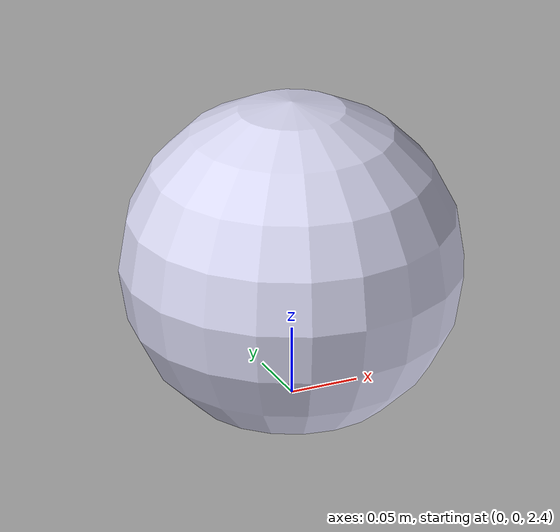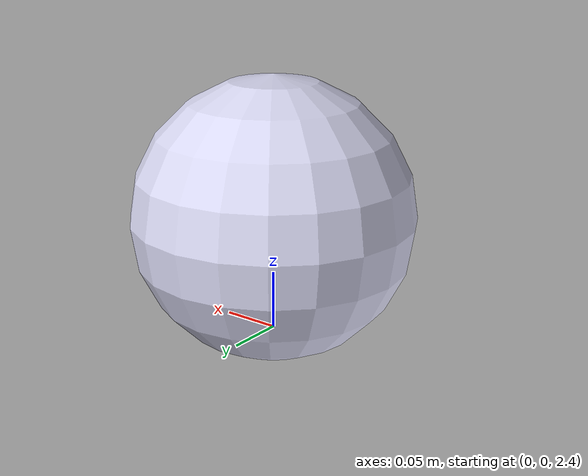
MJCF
<mujoco model="low_gravity">
  <option timestep="0.002" gravity="0 0 -1.62" integrator="RK4"/>

  <visual>
    <headlight diffuse="0.6 0.6 0.6" ambient="0.3 0.3 0.3" specular="0 0 0"/>
    <rgba haze="0.15 0.25 0.35 1"/>
    <global azimuth="120" elevation="-20"/>
  </visual>

  <asset>
    <texture type="skybox" builtin="gradient" rgb1="0.05 0.05 0.1" rgb2="0 0 0"
             width="512" height="3072"/>
    <texture name="grid" type="2d" builtin="checker" rgb1="0.2 0.18 0.16" rgb2="0.3 0.27 0.24"
             width="300" height="300"/>
    <material name="grid" texture="grid" texrepeat="6 6" texuniform="true" reflectance="0.1"/>
  </asset>

  <worldbody>
    <light pos="0 0 3" dir="0 0 -1" diffuse="1 1 1"/>
    <geom name="floor" type="plane" size="0 0 0.05" material="grid"
          friction="1 0.005 0.0001"/>

    <body name="ball" pos="0 0 2.5">
      <freejoint/>
      <geom name="ball" type="sphere" size="0.12" rgba="0.85 0.85 0.95 1"
            mass="0.4" friction="0.5 0.005 0.0001"
            solref="0.012 1" solimp="0.92 0.96 0.001"/>
    </body>
  </worldbody>
</mujoco>
